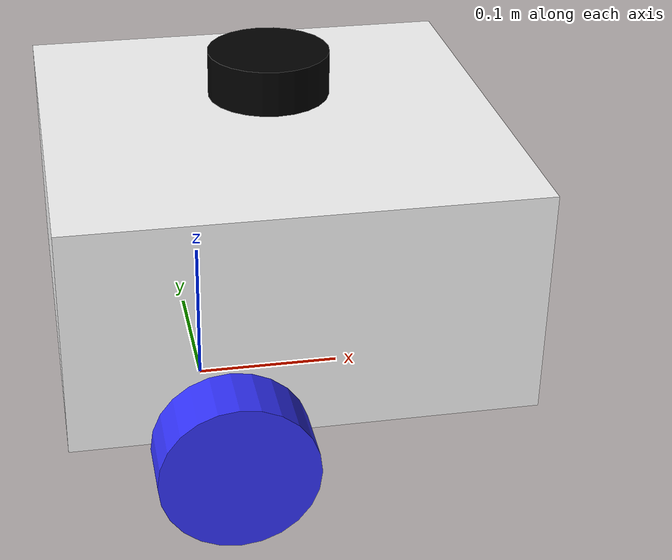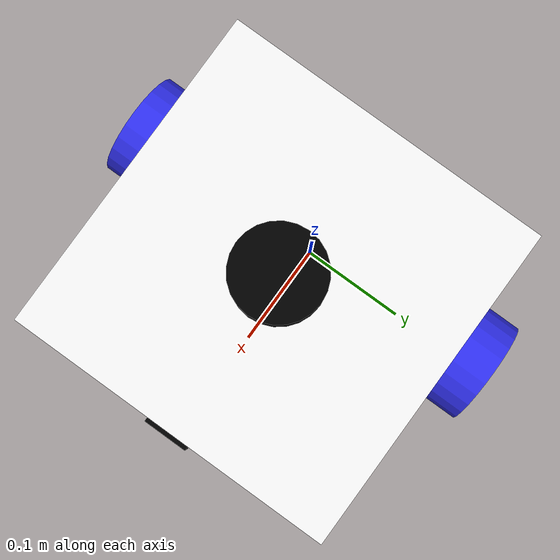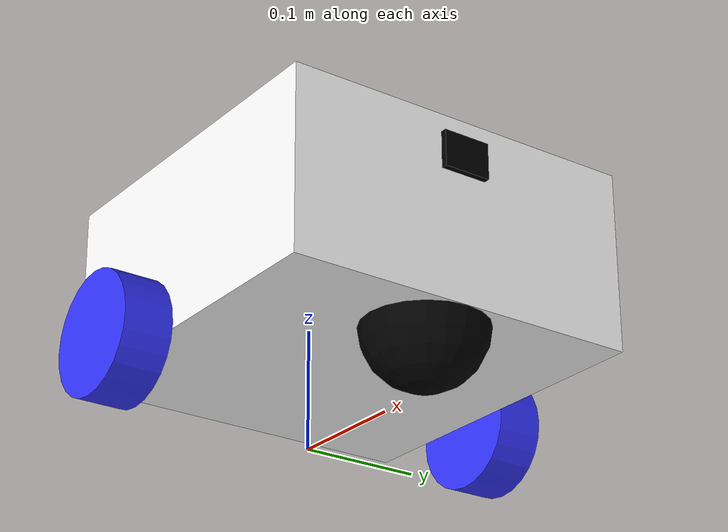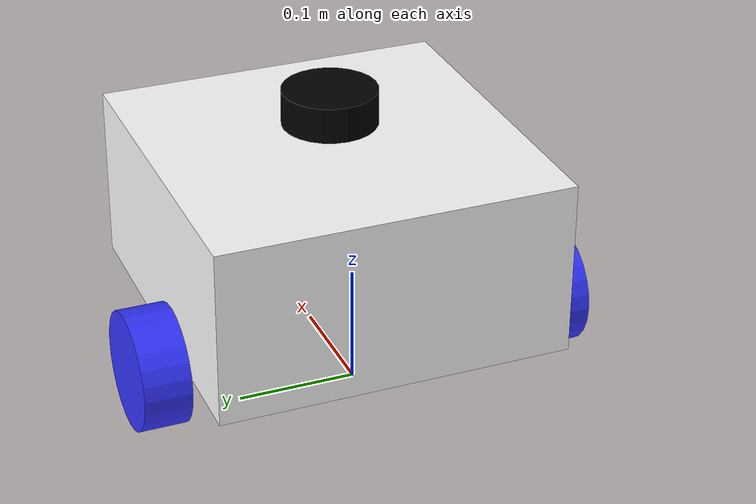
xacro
<?xml version="1.0"?>
<robot xmlns:xacro="http://www.ros.org/wiki/xacro"  name="robot">

    <xacro:include filename="robot_core.xacro" />
    <xacro:include filename="lidar.xacro" />
    <xacro:include filename="imu.xacro" />
    <xacro:include filename="camera.xacro" />
    <xacro:include filename="gazebo_control.xacro" />

</robot>

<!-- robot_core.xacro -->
<robot xmlns:xacro="http://www.ros.org/wiki/xacro">

    <xacro:include filename="inertial_macros.xacro" />

    <material name="white">
        <color rgba="1 1 1 1" />
    </material>

    <material name="black">
        <color rgba="0 0 0 1" />
    </material>

    <material name="blue">
        <color rgba="0.2 0.2 1 1" />
    </material>

    <material name="orange">
        <color rgba="1 0.3 0.1 1" />
    </material>

    <!-- Robot footprint projected onto the ground plane -->

    <link name="base_footprint"/>

    <joint name="base_footprint_joint" type="fixed">
        <parent link="base_footprint"/>
        <child link="base_link"/>
        <origin xyz="0 0 0.05" rpy="0 0 0"/>
    </joint>

    <!--base link at wheel-center height -->

    <link name="base_link"/>

    <!-- chassis link -->

    <joint name="chassis_joint" type="fixed">
        <parent link="base_link"/>
        <child link="chassis"/>
        <origin xyz="-0.1 0 0" />
    </joint>

    <link name="chassis">
        <visual>
            <origin xyz="0.15 0 0.075" />
            <geometry>
                <box size="0.3 0.3 0.15"/>
            </geometry>
            <material name="white"/>
        </visual>
        <collision>
            <origin xyz="0.15 0 0.075" />
            <geometry>
                <box size="0.3 0.3 0.15"/>
            </geometry>
        </collision>
        <xacro:inertial_box mass="0.5" x="0.3" y="0.3" z="0.15">
            <origin xyz="0.15 0 0.075" rpy="0 0 0" />
        </xacro:inertial_box>
    </link>

    <gazebo reference="chassis">
        <material>Gazebo/white</material>
    </gazebo>

    <!-- left wheel link -->

    <joint name="left_wheel_joint" type="continuous">
        <parent link="base_link"/>
        <child link="left_wheel"/>
        <origin xyz="0 0.175 0" rpy="-${pi/2} 0 0"/>
        <axis xyz="0 0 1"/>
    </joint>

    <link name="left_wheel">
        <visual>
            <origin xyz="0 0 0" />
            <geometry>
                <cylinder radius="0.05" length="0.04"/>
            </geometry>
            <material name="blue"/>
        </visual>
        <collision>
            <origin xyz="0 0 0" />
            <geometry>
                <cylinder radius="0.05" length="0.04"/>
            </geometry>
        </collision>
        <xacro:inertial_cylinder mass="0.1" length="0.04" radius="0.05">
            <origin xyz="0 0 0" rpy="0 0 0" />
        </xacro:inertial_cylinder>
    </link>

    <gazebo reference="left_wheel">
        <material>Gazebo/blue</material>
        <mu1 value="1.0"/>
        <mu2 value="1.0"/>
    </gazebo>

    <!-- right wheel link -->

    <joint name="right_wheel_joint" type="continuous">
        <parent link="base_link"/>
        <child link="right_wheel"/>
        <origin xyz="0 -0.175 0" rpy="${pi/2} 0 0"/>
        <axis xyz="0 0 -1"/>
    </joint>

    <link name="right_wheel">
        <visual>
            <origin xyz="0 0 0" />
            <geometry>
                <cylinder radius="0.05" length="0.04"/>
            </geometry>
            <material name="blue"/>
        </visual>
        <collision>
            <origin xyz="0 0 0" />
            <geometry>
                <cylinder radius="0.05" length="0.04"/>
            </geometry>
        </collision>
        <xacro:inertial_cylinder mass="0.1" length="0.04" radius="0.05">
            <origin xyz="0 0 0" rpy="0 0 0" />
        </xacro:inertial_cylinder>
    </link>

    <gazebo reference="right_wheel">
        <material>Gazebo/blue</material>
        <mu1 value="1.0"/>
        <mu2 value="1.0"/>
    </gazebo>

    <!-- front caster link -->

    <joint name="front_caster_joint" type="fixed">
        <parent link="base_link"/>
        <child link="front_caster"/>
        <origin xyz="0.15 0 0" />
    </joint>

    <link name="front_caster">
        <visual>
            <geometry>
                <sphere radius="0.05"/>
            </geometry>
            <material name="black"/>
        </visual>
        <collision>
            <geometry>
                <sphere radius="0.05"/>
            </geometry>
        </collision>
        <xacro:inertial_sphere mass="0.1" radius="0.05">
            <origin xyz="0 0 0" rpy="0 0 0" />
        </xacro:inertial_sphere>
    </link>

    <gazebo reference="front_caster">
        <material>Gazebo/black</material>
        <mu1 value="0.001"/>
        <mu2 value="0.001"/>
    </gazebo>

</robot>

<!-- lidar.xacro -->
<robot xmlns:xacro="http://www.ros.org/wiki/xacro">

    <!-- Fixed mounting joint on top of the chassis. -->
    <joint name="laser_joint" type="fixed">
        <parent link="base_link"/>
        <child link="laser_frame"/>
        <origin xyz="0.05 0 0.18" rpy="0 0 0"/>
    </joint>

    <!-- A compact 2D lidar used by the teaching robot. -->
    <link name="laser_frame">
        <visual>
            <geometry>
                <cylinder radius="0.04" length="0.03"/>
            </geometry>
            <material name="black"/>
        </visual>

        <collision>
            <geometry>
                <cylinder radius="0.04" length="0.03"/>
            </geometry>
        </collision>

        <xacro:inertial_cylinder
            mass="0.05"
            length="0.03"
            radius="0.04">
            <origin xyz="0 0 0" rpy="0 0 0"/>
        </xacro:inertial_cylinder>
    </link>

    <gazebo reference="laser_frame">
        <material>Gazebo/black</material>

        <sensor name="lidar" type="gpu_lidar">
            <topic>scan</topic>
            <update_rate>10</update_rate>

            <lidar>
                <scan>
                    <horizontal>
                        <samples>360</samples>
                        <resolution>1</resolution>
                        <min_angle>-${pi}</min_angle>
                        <max_angle>${pi}</max_angle>
                    </horizontal>
                </scan>

                <range>
                    <min>0.12</min>
                    <max>8.0</max>
                    <resolution>0.01</resolution>
                </range>
            </lidar>

            <alwaysOn>1</alwaysOn>
            <visualize>true</visualize>
        </sensor>
    </gazebo>

</robot>

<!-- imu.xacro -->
<robot xmlns:xacro="http://www.ros.org/wiki/xacro">

    <!-- IMU mounted near the robot centre to reduce rotational acceleration. -->
    <joint name="imu_joint" type="fixed">
        <parent link="base_link"/>
        <child link="imu_link"/>
        <origin xyz="0 0 0.10" rpy="0 0 0"/>
    </joint>

    <link name="imu_link">
        <visual>
            <geometry>
                <box size="0.04 0.03 0.01"/>
            </geometry>
            <material name="blue"/>
        </visual>

        <collision>
            <geometry>
                <box size="0.04 0.03 0.01"/>
            </geometry>
        </collision>

        <xacro:inertial_box
            mass="0.02"
            x="0.04"
            y="0.03"
            z="0.01">
            <origin xyz="0 0 0" rpy="0 0 0"/>
        </xacro:inertial_box>
    </link>

    <gazebo reference="imu_link">
        <material>Gazebo/Blue</material>

        <sensor name="imu_sensor" type="imu">
            <topic>imu</topic>
            <update_rate>50</update_rate>
            <always_on>true</always_on>
            <visualize>false</visualize>
        </sensor>
    </gazebo>

</robot>

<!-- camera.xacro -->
<robot xmlns:xacro="http://www.ros.org/wiki/xacro">

    <!-- Forward-facing RGB camera mounted on the front of the chassis. -->
    <joint name="camera_joint" type="fixed">
        <parent link="base_link"/>
        <child link="camera_link"/>
        <origin xyz="0.18 0 0.12" rpy="0 0 0"/>
    </joint>

    <link name="camera_link">
        <visual>
            <geometry>
                <box size="0.05 0.04 0.03"/>
            </geometry>
            <material name="black"/>
        </visual>

        <collision>
            <geometry>
                <box size="0.05 0.04 0.03"/>
            </geometry>
        </collision>

        <xacro:inertial_box
            mass="0.03"
            x="0.05"
            y="0.04"
            z="0.03">
            <origin xyz="0 0 0" rpy="0 0 0"/>
        </xacro:inertial_box>
    </link>

    <gazebo reference="camera_link">
        <material>Gazebo/Black</material>

        <sensor name="camera_sensor" type="camera">
            <topic>camera/image_raw</topic>
            <update_rate>15</update_rate>

            <camera>
                <horizontal_fov>1.047</horizontal_fov>
                <image>
                    <width>320</width>
                    <height>240</height>
                    <format>R8G8B8</format>
                </image>
                <clip>
                    <near>0.1</near>
                    <far>20.0</far>
                </clip>
            </camera>

            <always_on>true</always_on>
            <visualize>true</visualize>
        </sensor>
    </gazebo>

</robot>
